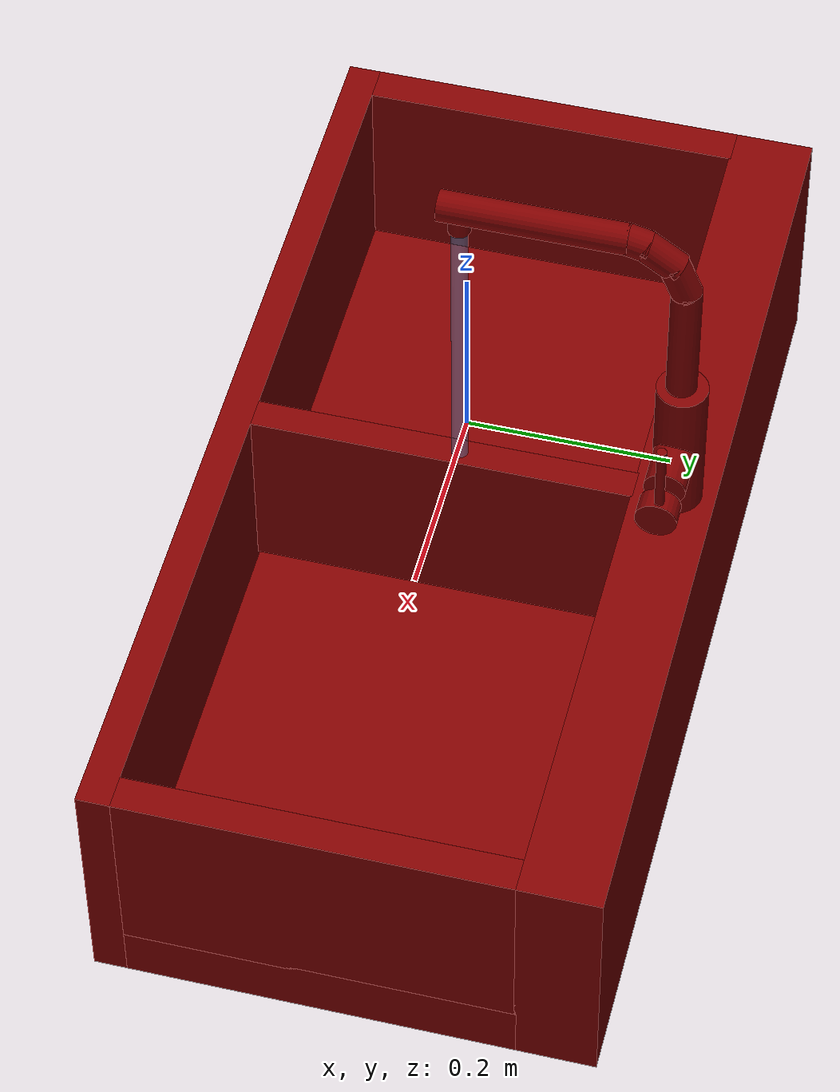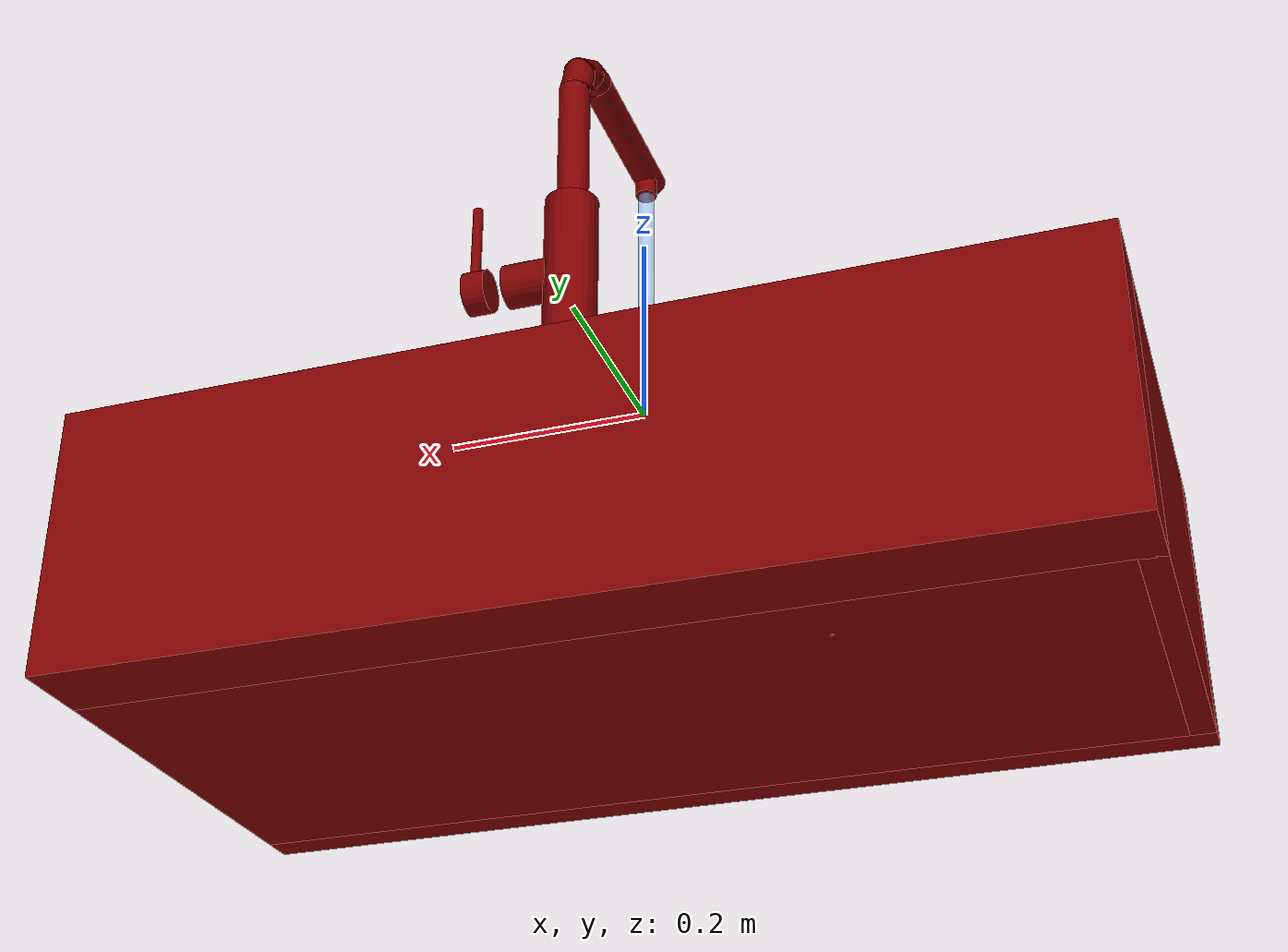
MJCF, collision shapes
<?xml version='1.0' encoding='UTF-8'?>
<mujoco model="model">
  <option timestep="0.002" gravity="0.0 0.0 -9.81"/>
  <compiler angle="radian"/>
  <asset>
    <mesh file="visuals/handle.obj" name="handle_vis"/>
    <mesh file="visuals/Body001.obj" name="Body001_vis"/>
    <mesh file="visuals/spout.obj" name="spout_vis"/>
    <texture file="visuals/T_BC001.png" name="Body001_material" type="2d"/>
    <material name="Body001_material" rgba="1 1 1 1.0" texture="Body001_material" shininess="0.1" specular="2"/>
    <texture file="visuals/T_BC001.png" name="handle_material" type="2d"/>
    <material name="handle_material" rgba="1 1 1 1.0" texture="handle_material" shininess="0.4472135901451111" specular="0.3103448502657381"/>
    <texture file="visuals/T_BC001.png" name="spout_material" type="2d"/>
    <material name="spout_material" rgba="1 1 1 1.0" texture="spout_material" shininess="0.4472135901451111" specular="0.3103448502657381"/>
  </asset>
  <default>
    <default class="visual">
      <geom conaffinity="0" contype="0" group="1" type="mesh"/>
    </default>
    <default class="collision">
      <geom group="0" rgba="0.5 0 0 0.5" solimp="0.998 0.998 0.001" solref="0.001 2"/>
    </default>
    <default class="spawn">
      <geom group="0" rgba="1 1 1 0.5" contype="0" conaffinity="0"/>
      <site group="0" rgba="1 1 1 0.5"/>
    </default>
    <default class="region">
      <geom group="1" conaffinity="0" contype="0" rgba="0 1 0 0"/>
    </default>
  </default>
  <worldbody>
    <body>
      <body name="object">
        <geom mesh="Body001_vis" type="mesh" solimp="0.998 0.998 0.001" solref="0.001 1" friction="0.95 0.3 0.1" class="visual" material="Body001_material"/>
        <geom class="collision" type="box" pos="-0.46896427869796753 -0.023084159940481186 -0.17865459620952606" size="0.017832264304161072 0.191153883934021 0.13331298530101776" quat="1.0 0.0 0.0 0.0"/>
        <geom class="collision" type="box" pos="-0.0005250170361250639 -0.02308417111635208 -0.1443372368812561" size="0.015185253694653511 0.19115479290485382 0.09899568557739258" quat="1.0 0.0 0.0 0.0"/>
        <geom class="collision" type="box" pos="0.4699346721172333 -0.023084159940481186 -0.14980769157409668" size="0.01686198078095913 0.19115403294563293 0.10446613281965256" quat="1.0 0.0 0.0 0.0"/>
        <geom class="collision" type="box" pos="6.440677680075169e-08 0.20663128793239594 -0.17865455150604248" size="0.48679661750793457 0.0403938926756382 0.13331300020217896" quat="1.0 0.0 0.0 0.0"/>
        <geom class="collision" type="box" pos="4.0105078369379044e-08 -0.2305738776922226 -0.17865455150604248" size="0.48679661750793457 0.016451485455036163 0.13331295549869537" quat="1.0 0.0 0.0 0.0"/>
        <geom class="collision" type="box" pos="0.012184236198663712 -0.022881807759404182 -0.28128746151924133" size="0.4746124744415283 0.19135664403438568 0.030680136755108833" quat="1.0 0.0 0.0 0.0"/>
        <geom class="collision" type="cylinder" pos="-0.2331215888261795 0.053658485412597656 -0.30111947655677795" size="0.0638626217842102 0.010848076082766056" quat="1.0 0.0 0.0 0.0"/>
        <geom class="collision" type="cylinder" pos="0.2341102659702301 0.053658485412597656 -0.3013029098510742" size="0.0638626217842102 0.010664579458534718" quat="1.0 0.0 0.0 0.0"/>
        <geom class="collision" type="cylinder" pos="-0.00014972896315157413 0.20837345719337463 0.03174792602658272" size="0.025186479091644287 0.07796847820281982" quat="1.0 0.0 0.0 0.0"/>
        <geom class="collision" type="cylinder" pos="0.03975735604763031 0.20696187019348145 0.030607126653194427" size="0.020408621057868004 0.02134617045521736" quat="1.3767878215276141e-07 0.7071068286895752 -1.3767875373105198e-07 0.7071067094802856"/>
        <body name="handle">
          <joint axis="1.0 0.0 0.0" pos="0.07462769001722336 0.20718786120414734 0.030960608273744583" limited="true" name="handle_temp_joint" type="hinge" range="-0.7853981633974483 0.7853981633974483" damping="0.5" frictionloss="1" armature="2"/>
          <joint axis="0.0 1.0 0.0" pos="0.07462769001722336 0.20718786120414734 0.030960608273744583" limited="true" name="handle_joint" type="hinge" range="0 0.5" damping="0.5" frictionloss="1" armature="2"/>
          <geom mesh="handle_vis" type="mesh" solimp="0.998 0.998 0.001" solref="0.001 1" friction="0.95 0.3 0.1" class="visual" material="handle_material"/>
          <geom class="collision" type="cylinder" pos="0.08902686089277267 0.20696187019348145 0.030607124790549278" size="0.020408619195222855 0.010828463360667229" quat="1.3767878215276141e-07 0.7071068286895752 -1.3767875373105198e-07 0.7071067094802856"/>
          <geom name="handle_main" class="collision" type="cylinder" pos="0.09323366731405258 0.20837345719337463 0.08650544285774231" size="0.004830267746001482 0.036618586629629135" quat="7.549790836947068e-08 1.0 -1.6292068494294654e-07 7.549789415861596e-08"/>
        </body>
        <body name="spout">
          <joint axis="0.0 0.0 1.0" pos="-0.00010259231203235686 0.2080770581960678 0.18622417747974396" limited="true" name="spout_joint" range="-1.0471975511965976 1.0471975511965976" type="hinge" damping="10"/>
          <site type="cylinder" rgba="0.5 0.75 1 0.5" size="0.008077822625637054 0.25433674454689026" pos="-0.00022850713867228478 -0.006902423687279224 0.014040738344192505" name="water"/>
          <geom mesh="spout_vis" type="mesh" solimp="0.998 0.998 0.001" solref="0.001 1" friction="0.95 0.3 0.1" class="visual" material="spout_material"/>
          <geom class="collision" type="cylinder" pos="-0.00022850713867228478 0.2069898098707199 0.17759908735752106" size="0.014976673759520054 0.06626234948635101" quat="1.0 0.0 0.0 0.0"/>
          <geom class="collision" type="cylinder" pos="4.6260698582045734e-05 0.06275240331888199 0.2975461781024933" size="0.014976673759520054 0.08919991552829742" quat="0.7071068286895752 0.7071067690849304 -1.5700924318127872e-16 -5.9269340452702814e-24" name="spout_main"/>
          <geom class="collision" type="cylinder" pos="-0.00022851070389151573 0.2002333104610443 0.25821176171302795" size="0.014976675622165203 0.020353922620415688" quat="0.982413113117218 0.1867203712463379 -4.146025768229317e-17 1.6905972352430204e-23"/>
          <geom class="collision" type="cylinder" pos="-0.00022850713867228478 -0.006902423687279224 0.27870461344718933" size="0.010961321182549 0.009372392669320107" quat="7.549790126404332e-08 1.0 -2.220446049250313e-16 -1.7645063234279917e-24"/>
          <geom class="collision" type="cylinder" pos="-0.00022851070389151573 0.18160898983478546 0.28285831212997437" size="0.014976675622165203 0.020353922620415688" quat="0.8874186277389526 0.4609643816947937 -1.023546738702665e-16 6.925955778681676e-24"/>
          <geom class="collision" type="cylinder" pos="-0.00022851070389151573 0.15852375328540802 0.2951258420944214" size="0.014976675622165203 0.012227360159158707" quat="0.7861025929450989 0.6180960536003113 -1.372449072622919e-16 2.2254117968248472e-23"/>
        </body>
        <geom class="region" name="reg_basin_left" type="box" pos="-0.23375546652823687 -0.0237249955534935 -0.14782967790961266" size="0.2123054720684886 0.18507411128282547 0.09834811261296272"/>
        <geom class="region" name="reg_basin_right" type="box" pos="0.2337692016735673 -0.023518703877925873 -0.1476185917854309" size="0.21374445112794638 0.18496488577127457 0.09799775278568268"/>
        <geom class="region" name="reg_main" type="box" pos="0.0 0.0 -0.17865456640720367" size="0.48779661750793457 0.24802522158622742 0.13431298530101776"/>
      </body>
    </body>
  </worldbody>
  <actuator>
    <motor name="handle_joint_actuator" joint="handle_joint" gear="10"/>
    <motor name="handle_temp_joint_actuator" joint="handle_temp_joint" gear="10"/>
    <motor name="spout_joint_actuator" joint="spout_joint" gear="10"/>
  </actuator>
</mujoco>
